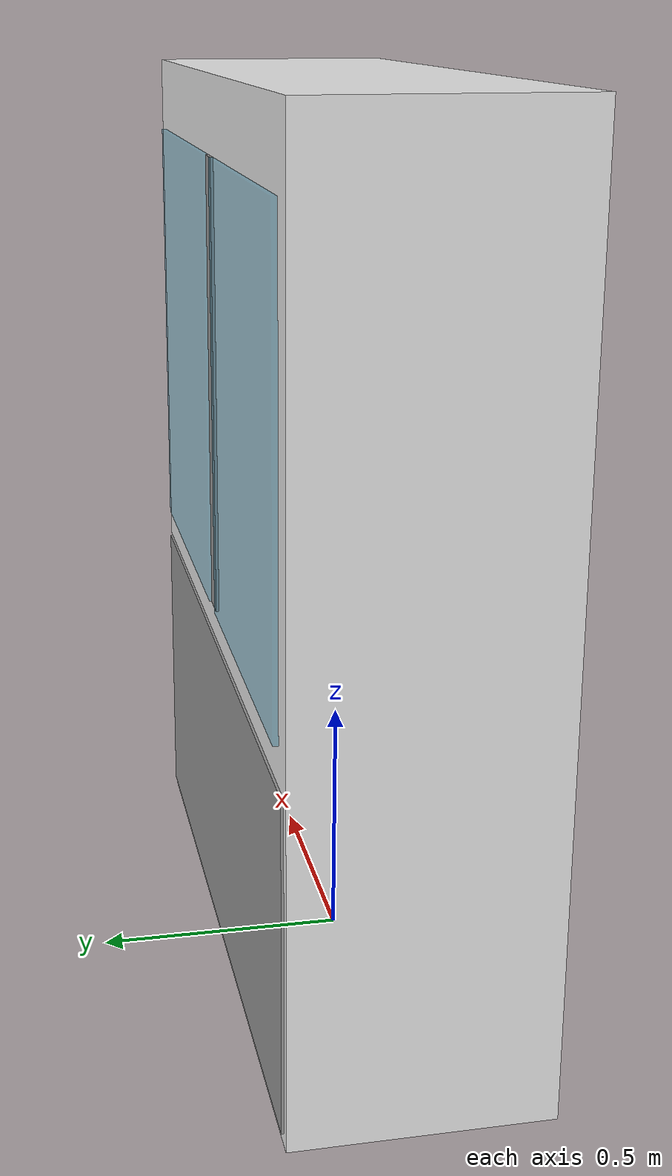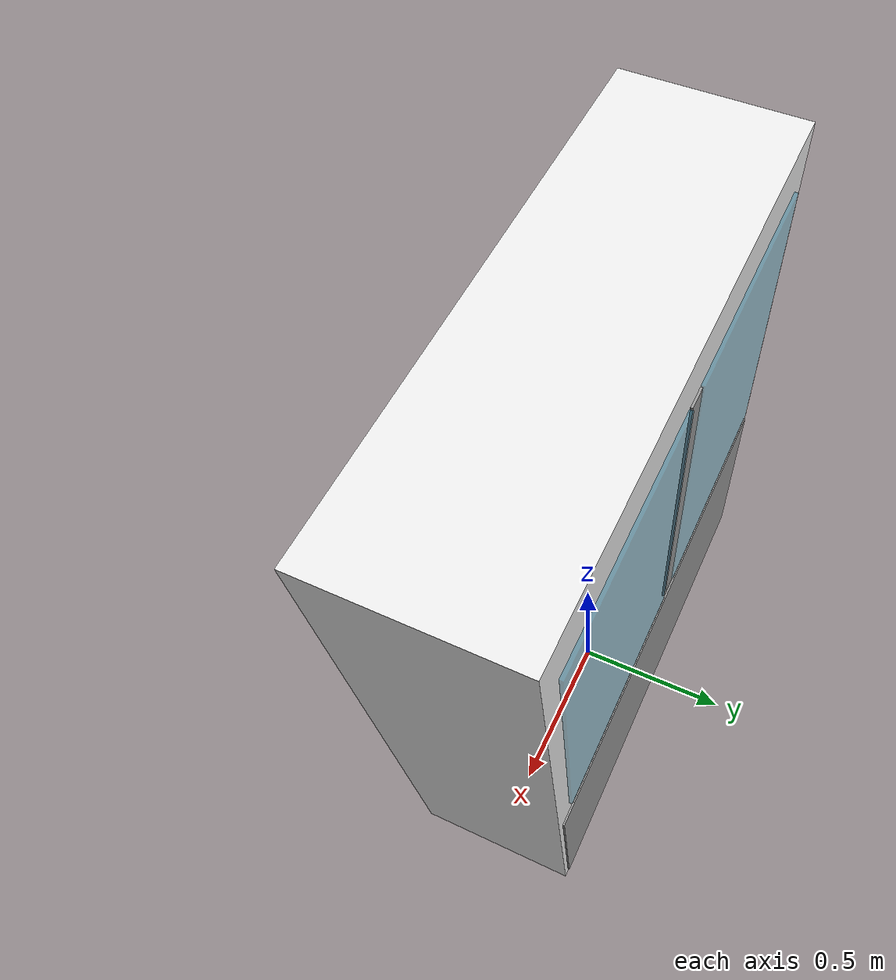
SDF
<?xml version="1.0" ?>
<sdf version="1.6">
  <model name="medicine_cabinet_with_doors">
    <static>false</static>

    <!-- ==================== MAIN CABINET FRAME ==================== -->
    <link name="main_frame">
      <pose>0 0 0 0 0 0</pose>
      <inertial>
        <mass>50.0</mass>
        <inertia>
          <ixx>15.0</ixx><ixy>0.0</ixy><ixz>0.0</ixz>
          <iyy>15.0</iyy><iyz>0.0</iyz>
          <izz>10.0</izz>
        </inertia>
      </inertial>

      <collision name="cabinet_collision">
        <pose>0 0 0.9 0 0 0</pose>
        <geometry>
          <box>
            <size>1.5 0.5 1.8</size>
          </box>
        </geometry>
      </collision>

      <visual name="outer_shell_visual">
        <pose>0 0 0.9 0 0 0</pose>
        <geometry>
          <box>
            <size>1.5 0.5 1.8</size>
          </box>
        </geometry>
        <material>
          <script>
            <uri>file://media/materials/scripts/gazebo.material</uri>
            <name>Gazebo/White</name>
          </script>
        </material>
      </visual>

      <visual name="lower_drawers_visual">
        <pose>0 0.01 0.35 0 0 0</pose>
        <geometry>
          <box>
            <size>1.46 0.49 0.65</size>
          </box>
        </geometry>
        <material>
          <script>
            <uri>file://media/materials/scripts/gazebo.material</uri>
            <name>Gazebo/Grey</name>
          </script>
        </material>
      </visual>

      <visual name="frame_divider">
        <pose>0 0.246 1.2 0 0 0</pose>
        <geometry>
          <box>
            <size>0.06 0.02 0.9</size>
          </box>
        </geometry>
        <material>
          <script>
            <uri>file://media/materials/scripts/gazebo.material</uri>
            <name>Gazebo/Grey</name>
          </script>
        </material>
      </visual>
    </link>

    <!-- LOCKS MAIN FRAME TO THE WORLD GRID -->
    <joint name="world_joint" type="fixed">
      <parent>world</parent>
      <child>main_frame</child>
    </joint>

    <!-- ==================== LEFT DOOR ==================== -->
    <link name="left_door">
      <!-- Positioned so the edge aligns with the hinge point -->
      <pose>-0.36 0.25 1.2 0 0 0</pose>
      <inertial>
        <mass>2.0</mass>
        <inertia>
          <ixx>0.2</ixx><ixy>0.0</ixy><ixz>0.0</ixz>
          <iyy>0.2</iyy><iyz>0.0</iyz>
          <izz>0.1</izz>
        </inertia>
      </inertial>

      <collision name="left_door_collision">
        <pose>0 0 0 0 0 0</pose>
        <geometry>
          <box>
            <size>0.65 0.02 0.9</size>
          </box>
        </geometry>
      </collision>

      <visual name="left_door_visual">
        <pose>0 0 0 0 0 0</pose>
        <geometry>
          <box>
            <size>0.65 0.02 0.9</size>
          </box>
        </geometry>
        <material>
          <ambient>0.0 0.5 0.7 0.3</ambient>
          <diffuse>0.0 0.5 0.7 0.3</diffuse>
          <specular>1.0 1.0 1.0 1.0</specular>
        </material>
      </visual>
    </link>

    <!-- LEFT HINGE JOINT -->
    <joint name="left_hinge" type="revolute">
      <parent>main_frame</parent>
      <child>left_door</child>
      <!-- Hinge anchor placed on the far left edge of the door frame -->
      <axis>
        <xyz>0 0 1</xyz> <!-- Rotates around Z axis -->
        <limit>
          <lower>-1.5708</lower> <!-- Opens out 90 degrees -->
          <upper>0.0</upper>      <!-- Stops completely closed -->
          <effort>10.0</effort>
          <velocity>1.0</velocity>
        </limit>
        <dynamics>
          <friction>0.5</friction> <!-- Adds physical resistance to movement -->
          <damping>0.1</damping>
        </dynamics>
      </axis>
    </joint>

    <!-- ==================== RIGHT DOOR ==================== -->
    <link name="right_door">
      <pose>0.36 0.25 1.2 0 0 0</pose>
      <inertial>
        <mass>2.0</mass>
        <inertia>
          <ixx>0.2</ixx><ixy>0.0</ixy><ixz>0.0</ixz>
          <iyy>0.2</iyy><iyz>0.0</iyz>
          <izz>0.1</izz>
        </inertia>
      </inertial>

      <collision name="right_door_collision">
        <pose>0 0 0 0 0 0</pose>
        <geometry>
          <box>
            <size>0.65 0.02 0.9</size>
          </box>
        </geometry>
      </collision>

      <visual name="right_door_visual">
        <pose>0 0 0 0 0 0</pose>
        <geometry>
          <box>
            <size>0.65 0.02 0.9</size>
          </box>
        </geometry>
        <material>
          <ambient>0.0 0.5 0.7 0.3</ambient>
          <diffuse>0.0 0.5 0.7 0.3</diffuse>
          <specular>1.0 1.0 1.0 1.0</specular>
        </material>
      </visual>
    </link>

    <!-- RIGHT HINGE JOINT -->
    <joint name="right_hinge" type="revolute">
      <parent>main_frame</parent>
      <child>right_door</child>
      <!-- Hinge anchor placed on the far right edge of the door frame -->
      <axis>
        <xyz>0 0 1</xyz>
        <limit>
          <lower>0.0</lower>
          <upper>1.5708</upper> <!-- Opens out 90 degrees in the opposite direction -->
          <effort>10.0</effort>
          <velocity>1.0</velocity>
        </limit>
        <dynamics>
          <friction>0.5</friction>
          <damping>0.1</damping>
        </dynamics>
      </axis>
    </joint>

  </model>
</sdf>
